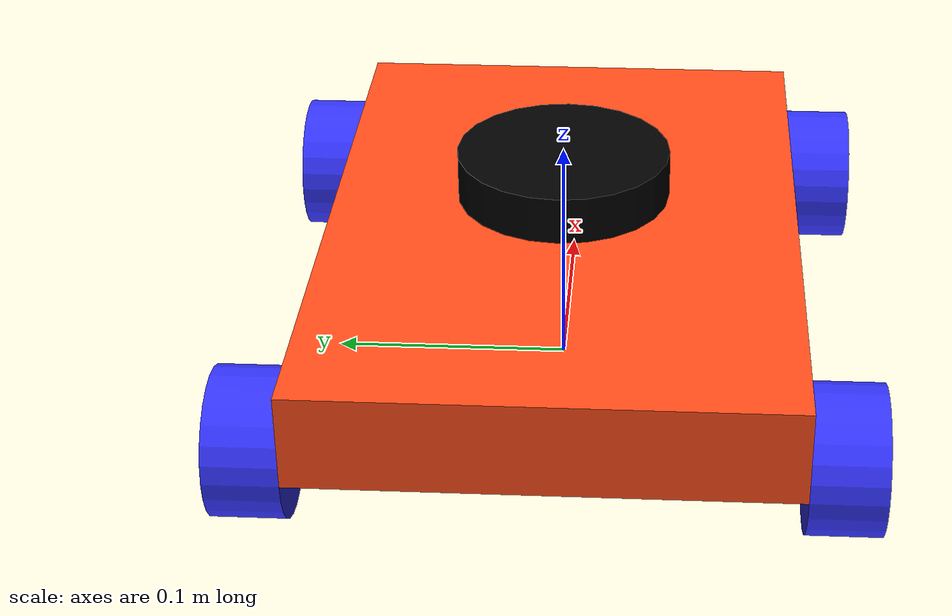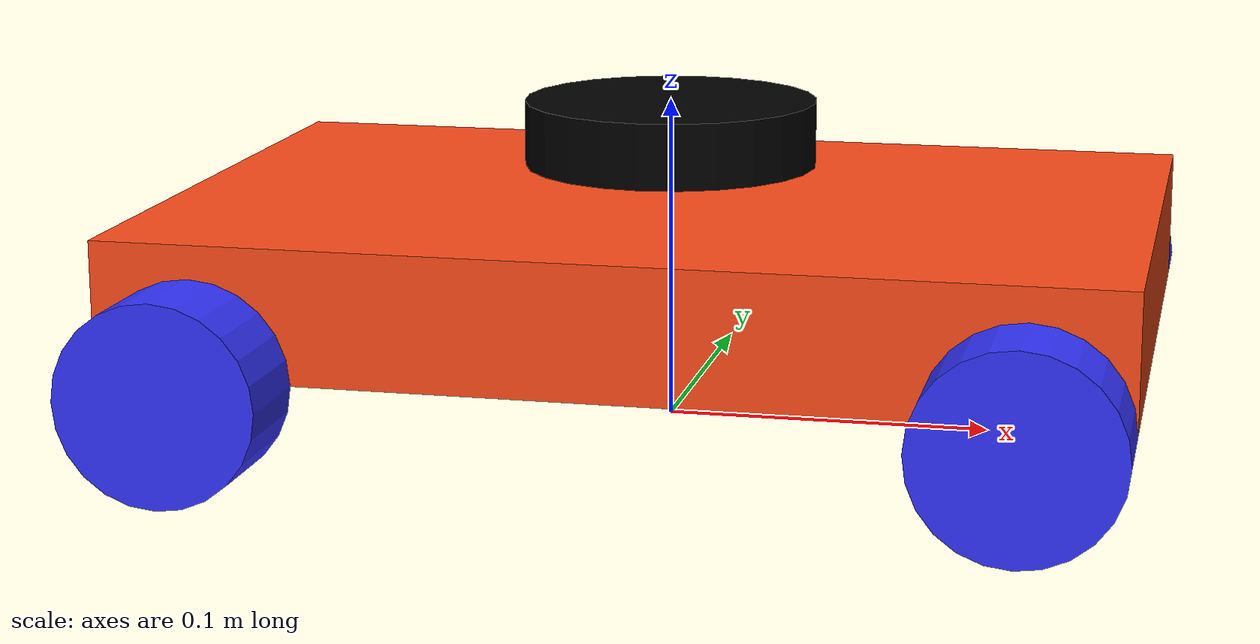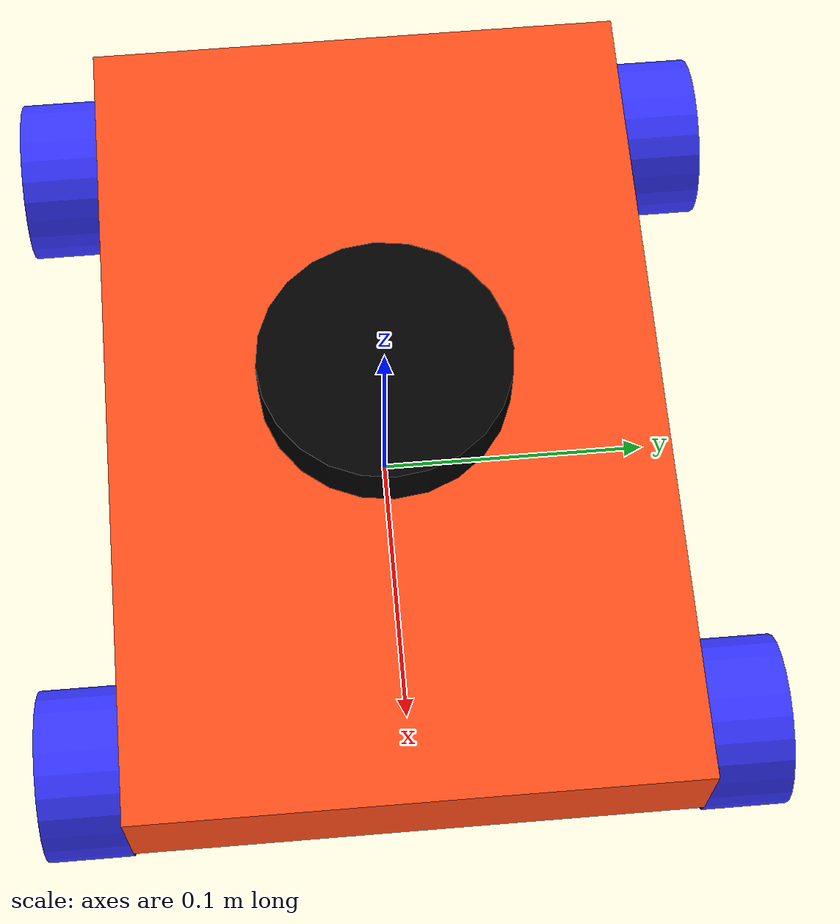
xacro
<?xml version="1.0"?>
<robot xmlns:xacro="http://www.ros.org/wiki/xacro"  name="robot">

    <xacro:include filename="robot_base.xacro"/>
     <xacro:include filename="ros2_control.xacro"/>
    <xacro:include filename="lidar.xacro"/>

</robot>

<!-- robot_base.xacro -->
<robot xmlns:xacro="http://www.ros.org/wiki/xacro">

    <xacro:include filename="inertial_macros.xacro"/>
     <xacro:arg name="namespace" default="" />

    <material name="white">
        <color rgba="1.0 1.0 1.0 1.0"/>
    </material>

    <material name="orange">
        <color rgba="1 0.3 0.1 1"/>
    </material>

    <material name="blue">
        <color rgba="0.2 0.2 1 1"/>
    </material>

    <material name="black">
        <color rgba="0 0 0 1"/>
    </material>

    <material name="red">
        <color rgba="1 0 0 1"/>
    </material>

    <!-- BASE FOOTPRINT LINK -->

    <link name="base_footprint">
        <origin xyz="0.0 0.0 0.0" rpy="0.0 0.0 0.0"/>
    </link>

    <!-- BASE LINK -->

    <joint name="base_joint" type="fixed">
        <origin xyz="0.0 0.0 0.03" rpy="0 0 0"/>
        <parent link="base_footprint"/>
        <child link="base_link"/>
    </joint>

    <link name="base_link">
        <visual>
            <origin xyz="0 0 0.02"/>
            <geometry>
                <box size="0.3 0.2 0.04"/>
            </geometry>
            <material name="orange"/>
        </visual>
        <collision>
            <origin xyz="0 0 0.02"/>
            <geometry>
                <box size="0.3 0.2 0.04"/>
            </geometry>
        </collision>
        <xacro:inertial_box mass="5" x="0.3" y="0.2" z="0.04">
            <origin xyz="0 0 0.02" rpy="0.0 0.0 0.0"/>
        </xacro:inertial_box>
    </link>

    <gazebo reference="base_link">
        <material>Gazebo/Orange</material>
    </gazebo>

    <!-- LEFT WHEEL LINK-->

    <joint name="front_left_wheel_joint" type="continuous">
        <parent link="base_link"/>
        <child link="front_left_wheel"/>
        <origin xyz="0.12 0.115 0.0" rpy="-${pi/2} 0.0 0.0"/>
        <axis xyz="0.0 0.0 1.0"/>
        <dynamics damping="1.0" friction="1.0"/>
    </joint>

    <link name="front_left_wheel">
        <visual>
            <geometry>
                <cylinder radius="0.03" length="0.03"/>
            </geometry>
            <material name="blue"/>
        </visual>
        <collision>
            <geometry>
                <cylinder radius="0.03" length="0.03"/>
            </geometry>
        </collision>

        <xacro:inertial_cylinder mass="0.6" length="0.03" radius="0.03">
            <origin xyz="0.0 0.0 0.0" rpy="0.0 0.0 0.0"/>
        </xacro:inertial_cylinder>
    </link>

    <gazebo reference="front_left_wheel">
        <material>Gazebo/Blue</material>
        <mu1>1.5</mu1>
        <mu2>0.7</mu2>
        <kp>200000.0</kp>
        <kd>5000.0</kd>
        <minDepth>0.002</minDepth>
        <maxVel>10</maxVel>
        <fdir1>0 1 0</fdir1>
    </gazebo>

    <joint name="back_left_wheel_joint" type="continuous">
        <parent link="base_link"/>
        <child link="back_left_wheel"/>
        <origin xyz="-0.12 0.115 0.0" rpy="-${pi/2} 0.0 0.0"/>
        <axis xyz="0.0 0.0 1.0"/>
        <dynamics damping="1.0" friction="1.0"/>
    </joint>

    <link name="back_left_wheel">
        <visual>
            <geometry>
                <cylinder radius="0.03" length="0.03"/>
            </geometry>
            <material name="blue"/>
        </visual>
        <collision>
            <geometry>
                <cylinder radius="0.03" length="0.03"/>
            </geometry>

        </collision>

        <xacro:inertial_cylinder mass="0.6" length="0.03" radius="0.03">
            <origin xyz="0.0 0.0 0.0" rpy="0.0 0.0 0.0"/>
        </xacro:inertial_cylinder>
    </link>

    <gazebo reference="back_left_wheel">
        <material>Gazebo/Blue</material>
        <mu1>1.5</mu1>
        <mu2>0.7</mu2>
        <kp>200000.0</kp>
        <kd>5000.0</kd>
        <minDepth>0.002</minDepth>
        <maxVel>10</maxVel>
        <fdir1>0 1 0</fdir1>
    </gazebo>

    <!-- RIGHT WHEEL LINK-->

    <joint name="front_right_wheel_joint" type="continuous">
        <parent link="base_link"/>
        <child link="front_right_wheel"/>
        <origin xyz="0.12 -0.115 0.0" rpy="${pi/2} 0.0 0.0"/>
        <axis xyz="0.0 0.0 -1.0"/>
        <dynamics damping="1.0" friction="1.0"/>
    </joint>

    <link name="front_right_wheel">
        <visual>
            <geometry>
                <cylinder radius="0.03" length="0.03"/>
            </geometry>
            <material name="blue"/>
        </visual>
        <collision>
            <geometry>
                <cylinder radius="0.03" length="0.03"/>
            </geometry>

        </collision>
        <xacro:inertial_cylinder mass="0.6" length="0.03" radius="0.03">
            <origin xyz="0.0 0.0 0.0" rpy="0.0 0.0 0.0"/>
        </xacro:inertial_cylinder>
    </link>

    <gazebo reference="front_right_wheel">
        <material>Gazebo/Blue</material>
        <mu1>1.5</mu1>
        <mu2>0.7</mu2>
        <kp>200000.0</kp>
        <kd>5000.0</kd>
        <minDepth>0.002</minDepth>
        <maxVel>10</maxVel>
        <fdir1>0 1 0</fdir1>
    </gazebo>

    <joint name="back_right_wheel_joint" type="continuous">
        <parent link="base_link"/>
        <child link="back_right_wheel"/>
        <origin xyz="-0.12 -0.115 0.0" rpy="${pi/2} 0.0 0.0"/>
        <axis xyz="0.0 0.0 -1.0"/>
        <dynamics damping="1.0" friction="1.0"/>
    </joint>

    <link name="back_right_wheel">
        <visual>
            <geometry>
                <cylinder radius="0.03" length="0.03"/>
            </geometry>
            <material name="blue"/>
        </visual>
        <collision>
            <geometry>
                <cylinder radius="0.03" length="0.03"/>
            </geometry>

        </collision>
        <xacro:inertial_cylinder mass="0.6" length="0.03" radius="0.03">
            <origin xyz="0.0 0.0 0.0" rpy="0.0 0.0 0.0"/>
        </xacro:inertial_cylinder>
    </link>

    <gazebo reference="back_right_wheel">
        <material>Gazebo/Blue</material>
        <mu1>1.5</mu1>
        <mu2>0.7</mu2>
        <kp>200000.0</kp>
        <kd>5000.0</kd>
        <minDepth>0.002</minDepth>
        <maxVel>10</maxVel>
        <fdir1>0 1 0</fdir1>
    </gazebo>
</robot>

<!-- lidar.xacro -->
<robot xmlns:xacro="http://www.ros.org/wiki/xacro">

    <joint name="laser_joint" type="fixed">
        <origin xyz="0.0 0.0 0.06" rpy="0.0 0.0 0.0"/>
        <parent link="base_link"/>
        <child link="laser_frame"/>
    </joint>

    <link name="laser_frame">
        <visual>
            <geometry>
                <cylinder radius="0.045" length="0.02"/>
            </geometry>
            <material name="black"/>
        </visual>
        <collision>
            <geometry>
                <cylinder radius="0.045" length="0.02"/>
            </geometry>
        </collision>
        <xacro:inertial_cylinder mass="0.1" length="0.02" radius="0.045">
            <origin xyz="0.0 0.0 0.0" rpy="0.0 0.0 0.0"/>
        </xacro:inertial_cylinder>
    </link>

    <gazebo reference="laser_frame">
        <material>Gazebo/Black</material>

        <sensor name="laser" type="gpu_lidar">
            <pose> 0 0 0 0 0 0 </pose>
            <visualize>true</visualize>
            <update_rate>10</update_rate>
            <lidar>
                <scan>
                    <horizontal>
                        <samples>360</samples>
                        <resolution>1</resolution>
                        <min_angle>-3.14</min_angle>
                        <max_angle>3.14</max_angle>
                    </horizontal>
                </scan>
                <range>
                    <min>0.08</min>
                    <max>10.0</max>
                </range>
            </lidar>
            <topic>scan</topic>
            <gz_frame_id>laser_frame</gz_frame_id>
        </sensor>
    </gazebo>

</robot>
